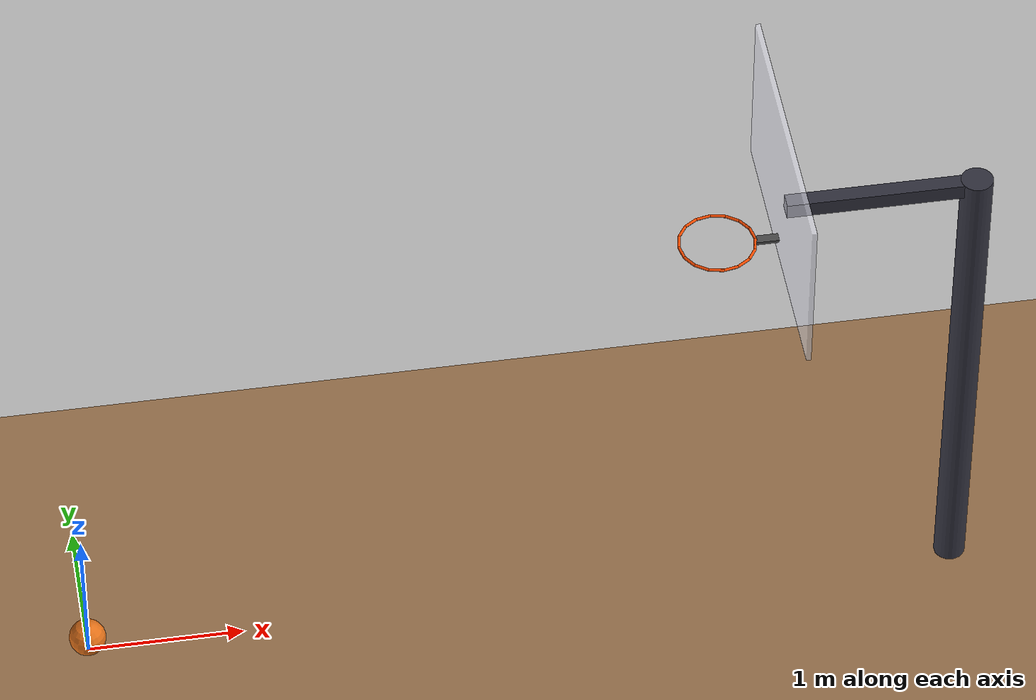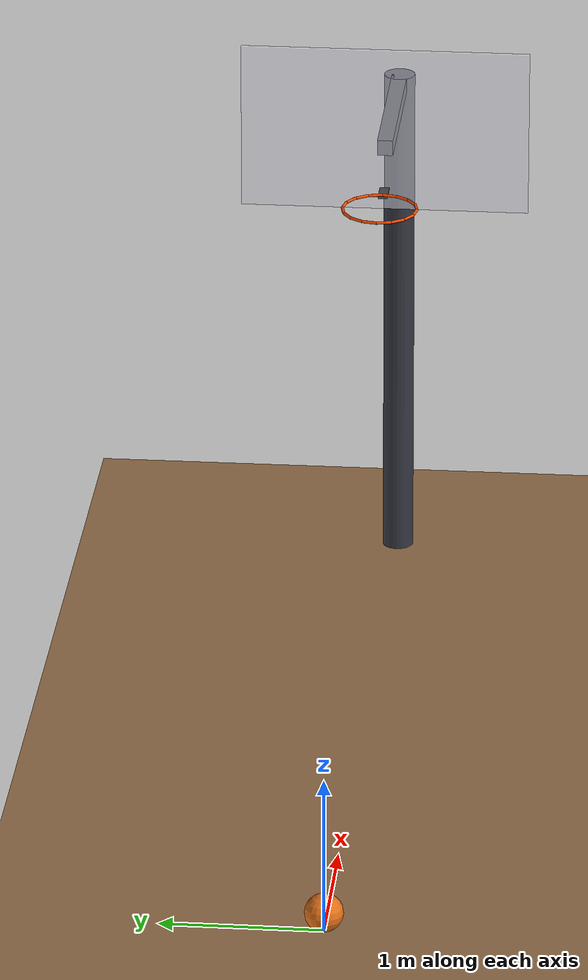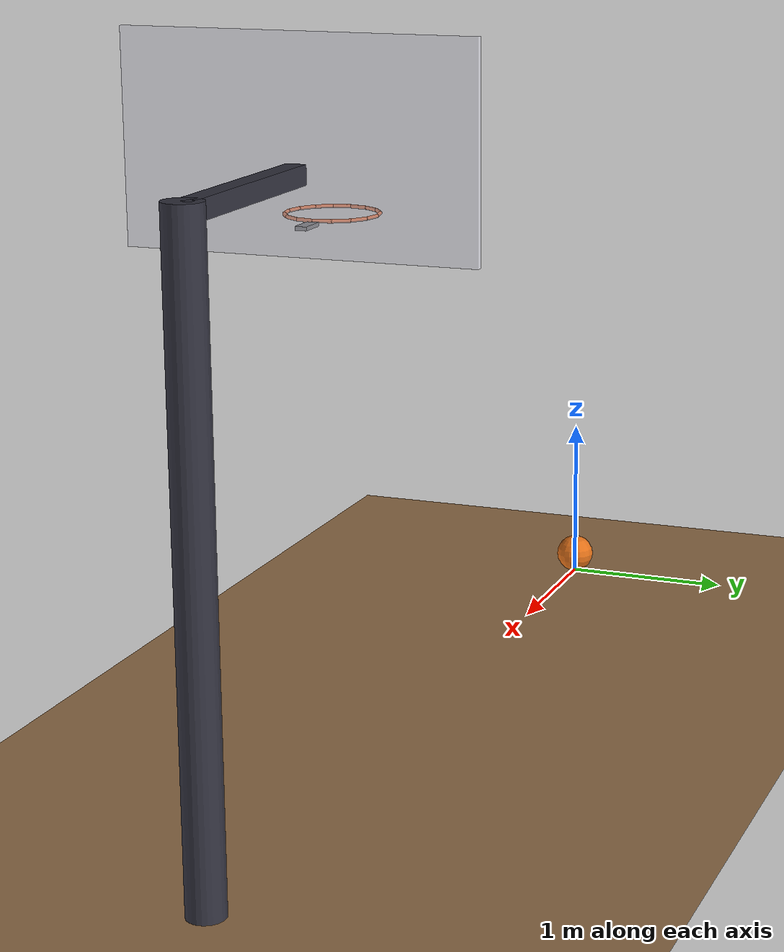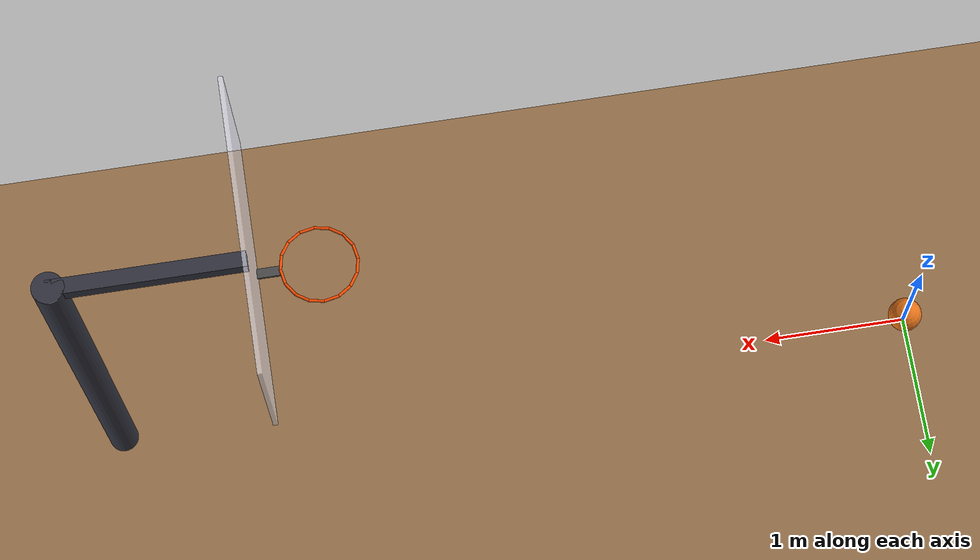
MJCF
<mujoco model="basketball_shot">
  <option timestep="0.002" gravity="0 0 -9.81"/>
  <worldbody>
    <light name="sun" pos="2 -3 6" dir="0 0.5 -1" directional="true"/>
    <geom name="floor" type="plane" size="10 10 0.1" rgba="0.6 0.45 0.3 1"/>
    <body name="ball" pos="0 0 0.12">
      <freejoint/>
      <inertial pos="0 0 0" mass="0.62" diaginertia="0.00585 0.00585 0.00585"/>
      <geom name="ball" type="sphere" size="0.119" rgba="0.9 0.45 0.1 1" solref="0.01 0.15" friction="0.8 0.01 0.001"/>
    </body>
    <body name="hoop" pos="4 0 3.05">
      <geom name="rim_00" type="capsule" size="0.009" fromto="0.2366 0 0 0.2186 0.0905 0" rgba="1 0.3 0 1"/>
      <geom name="rim_01" type="capsule" size="0.009" fromto="0.2186 0.0905 0 0.1673 0.1673 0" rgba="1 0.3 0 1"/>
      <geom name="rim_02" type="capsule" size="0.009" fromto="0.1673 0.1673 0 0.0905 0.2186 0" rgba="1 0.3 0 1"/>
      <geom name="rim_03" type="capsule" size="0.009" fromto="0.0905 0.2186 0 0 0.2366 0" rgba="1 0.3 0 1"/>
      <geom name="rim_04" type="capsule" size="0.009" fromto="0 0.2366 0 -0.0905 0.2186 0" rgba="1 0.3 0 1"/>
      <geom name="rim_05" type="capsule" size="0.009" fromto="-0.0905 0.2186 0 -0.1673 0.1673 0" rgba="1 0.3 0 1"/>
      <geom name="rim_06" type="capsule" size="0.009" fromto="-0.1673 0.1673 0 -0.2186 0.0905 0" rgba="1 0.3 0 1"/>
      <geom name="rim_07" type="capsule" size="0.009" fromto="-0.2186 0.0905 0 -0.2366 0 0" rgba="1 0.3 0 1"/>
      <geom name="rim_08" type="capsule" size="0.009" fromto="-0.2366 0 0 -0.2186 -0.0905 0" rgba="1 0.3 0 1"/>
      <geom name="rim_09" type="capsule" size="0.009" fromto="-0.2186 -0.0905 0 -0.1673 -0.1673 0" rgba="1 0.3 0 1"/>
      <geom name="rim_10" type="capsule" size="0.009" fromto="-0.1673 -0.1673 0 -0.0905 -0.2186 0" rgba="1 0.3 0 1"/>
      <geom name="rim_11" type="capsule" size="0.009" fromto="-0.0905 -0.2186 0 0 -0.2366 0" rgba="1 0.3 0 1"/>
      <geom name="rim_12" type="capsule" size="0.009" fromto="0 -0.2366 0 0.0905 -0.2186 0" rgba="1 0.3 0 1"/>
      <geom name="rim_13" type="capsule" size="0.009" fromto="0.0905 -0.2186 0 0.1673 -0.1673 0" rgba="1 0.3 0 1"/>
      <geom name="rim_14" type="capsule" size="0.009" fromto="0.1673 -0.1673 0 0.2186 -0.0905 0" rgba="1 0.3 0 1"/>
      <geom name="rim_15" type="capsule" size="0.009" fromto="0.2186 -0.0905 0 0.2366 0 0" rgba="1 0.3 0 1"/>
    </body>
    <body name="backboard" pos="4.396 0 3.05">
      <geom name="bracket" type="box" pos="-0.087 0 -0.015" size="0.072 0.03 0.01" rgba="0.3 0.3 0.3 1"/>
      <geom name="board" type="box" pos="0 0 0.385" size="0.015 0.915 0.535" rgba="0.95 0.95 1 0.6"/>
    </body>
    <body name="stand" pos="5.6 0 0">
      <geom name="pole" type="cylinder" fromto="0 0 0 0 0 3.35" size="0.1" rgba="0.2 0.2 0.25 1"/>
      <geom name="arm" type="box" pos="-0.585 0 3.3" size="0.6 0.05 0.05" rgba="0.2 0.2 0.25 1"/>
    </body>
  </worldbody>
  <keyframe>
    <key name="start" qpos="0 0 0.12 1 0 0 0" qvel="2.8012 0 9.056 0 0 0"/>
  </keyframe>
</mujoco>
